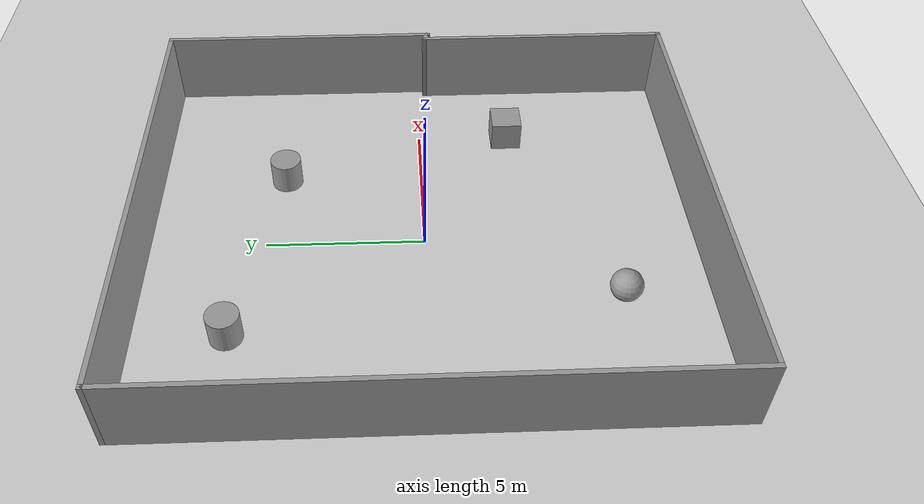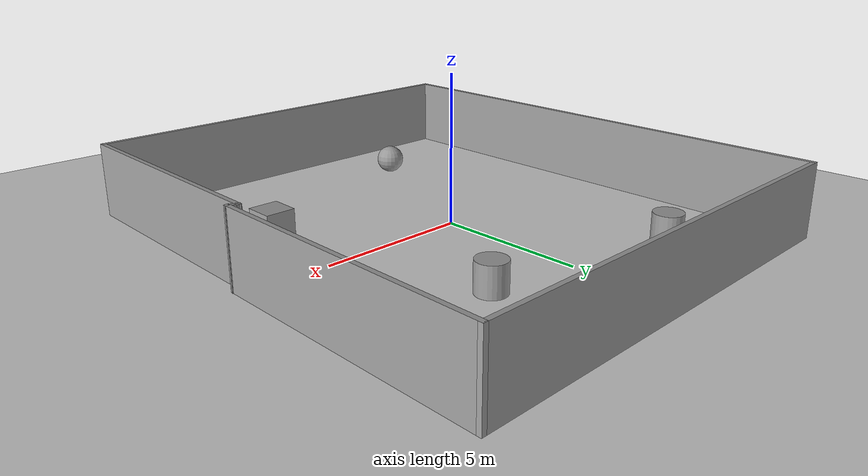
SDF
<sdf version="1.7">
 <world name="default">
  <light name="sun" type="directional">
   <pose>0 0 10 0 -0 0</pose>
   <diffuse>0.8 0.8 0.8 1</diffuse>
   <specular>0.2 0.2 0.2 1</specular>
   <attenuation>
    <range>1000</range>
    <constant>0.9</constant>
    <linear>0.01</linear>
    <quadratic>0.001</quadratic>
   </attenuation>
   <direction>-0.5 0.1 -0.9</direction>
   <spot><inner_angle>0</inner_angle><outer_angle>0</outer_angle><falloff>0</falloff></spot>
  </light>
  <model name="ground_plane">
   <static>1</static>
   <link name="link">
    <collision name="collision">
     <geometry><plane><normal>0 0 1</normal><size>100 100</size></plane></geometry>
     <surface><friction><ode><mu>100</mu><mu2>50</mu2></ode></friction></surface>
    </collision>
    <visual name="visual">
     <cast_shadows>0</cast_shadows>
     <geometry><plane><normal>0 0 1</normal><size>100 100</size></plane></geometry>
     <material>
      <script><uri>file://media/materials/scripts/gazebo.material</uri><name>Gazebo/Grey</name></script>
     </material>
    </visual>
   </link>
  </model>
  <gravity>0 0 -9.8</gravity>
  <magnetic_field>6e-06 2.3e-05 -4.2e-05</magnetic_field>
  <atmosphere type="adiabatic"/>
  <physics type="ode">
   <max_step_size>0.001</max_step_size>
   <real_time_factor>1</real_time_factor>
   <real_time_update_rate>1000</real_time_update_rate>
  </physics>
  <scene><ambient>0.4 0.4 0.4 1</ambient><background>0.7 0.7 0.7 1</background><shadows>1</shadows></scene>
  <spherical_coordinates>
   <surface_model>EARTH_WGS84</surface_model>
   <latitude_deg>0</latitude_deg>
   <longitude_deg>0</longitude_deg>
   <elevation>0</elevation>
   <heading_deg>0</heading_deg>
  </spherical_coordinates>
  <model name="new_wall">
   <pose>1.11385 0.040397 0 0 -0 0</pose>
   <link name="Wall_0">
    <collision name="Wall_0_Collision">
     <geometry><box><size>9.25 0.15 2.5</size></box></geometry>
     <pose>0 0 1.25 0 -0 0</pose>
    </collision>
    <visual name="Wall_0_Visual">
     <pose>0 0 1.25 0 -0 0</pose>
     <geometry><box><size>9.25 0.15 2.5</size></box></geometry>
     <material>
      <script><uri>file://media/materials/scripts/gazebo.material</uri><name>Gazebo/Grey</name></script>
      <ambient>1 1 1 1</ambient>
     </material>
     <meta><layer>0</layer></meta>
    </visual>
    <pose>6.7475 4.125 0 0 -0 1.5708</pose>
   </link>
   <link name="Wall_1">
    <collision name="Wall_1_Collision">
     <geometry><box><size>15 0.15 2.5</size></box></geometry>
     <pose>0 0 1.25 0 -0 0</pose>
    </collision>
    <visual name="Wall_1_Visual">
     <pose>0 0 1.25 0 -0 0</pose>
     <geometry><box><size>15 0.15 2.5</size></box></geometry>
     <material>
      <script><uri>file://media/materials/scripts/gazebo.material</uri><name>Gazebo/Grey</name></script>
      <ambient>1 1 1 1</ambient>
     </material>
     <meta><layer>0</layer></meta>
    </visual>
    <pose>-0.677499 8.675 0 0 -0 3.14159</pose>
   </link>
   <link name="Wall_2">
    <collision name="Wall_2_Collision">
     <geometry><box><size>17.5 0.15 2.5</size></box></geometry>
     <pose>0 0 1.25 0 -0 0</pose>
    </collision>
    <visual name="Wall_2_Visual">
     <pose>0 0 1.25 0 -0 0</pose>
     <geometry><box><size>17.5 0.15 2.5</size></box></geometry>
     <material>
      <script><uri>file://media/materials/scripts/gazebo.material</uri><name>Gazebo/Grey</name></script>
      <ambient>1 1 1 1</ambient>
     </material>
     <meta><layer>0</layer></meta>
    </visual>
    <pose>-8.1025 -0 0 0 -0 -1.5708</pose>
   </link>
   <link name="Wall_3">
    <collision name="Wall_3_Collision">
     <geometry><box><size>14.75 0.15 2.5</size></box></geometry>
     <pose>0 0 1.25 0 -0 0</pose>
    </collision>
    <visual name="Wall_3_Visual">
     <pose>0 0 1.25 0 -0 0</pose>
     <geometry><box><size>14.75 0.15 2.5</size></box></geometry>
     <material>
      <script><uri>file://media/materials/scripts/gazebo.material</uri><name>Gazebo/Grey</name></script>
      <ambient>1 1 1 1</ambient>
     </material>
     <meta><layer>0</layer></meta>
    </visual>
    <pose>-0.802499 -8.675 0 0 -0 0</pose>
   </link>
   <link name="Wall_4">
    <collision name="Wall_4_Collision">
     <geometry><box><size>8.5 0.15 2.5</size></box></geometry>
     <pose>0 0 1.25 0 -0 0</pose>
    </collision>
    <visual name="Wall_4_Visual">
     <pose>0 0 1.25 0 -0 0</pose>
     <geometry><box><size>8.5 0.15 2.5</size></box></geometry>
     <material>
      <script><uri>file://media/materials/scripts/gazebo.material</uri><name>Gazebo/Grey</name></script>
      <ambient>1 1 1 1</ambient>
     </material>
     <meta><layer>0</layer></meta>
    </visual>
    <pose>6.4975 -4.5 0 0 -0 1.5708</pose>
   </link>
   <link name="Wall_6">
    <collision name="Wall_6_Collision">
     <geometry><box><size>0.419258 0.15 2.5</size></box></geometry>
     <pose>0 0 1.25 0 -0 0</pose>
    </collision>
    <visual name="Wall_6_Visual">
     <pose>0 0 1.25 0 -0 0</pose>
     <geometry><box><size>0.419258 0.15 2.5</size></box></geometry>
     <material>
      <script><uri>file://media/materials/scripts/gazebo.material</uri><name>Gazebo/Grey</name></script>
      <ambient>1 1 1 1</ambient>
     </material>
     <meta><layer>0</layer></meta>
    </visual>
    <pose>6.6225 -0.375 0 0 -0 -0.380506</pose>
   </link>
   <static>1</static>
  </model>
  <model name="unit_sphere">
   <pose>-2.48763 -5.9011 0.5 0 -0 0</pose>
   <link name="link">
    <inertial>
     <mass>1</mass>
     <inertia><ixx>0.1</ixx><ixy>0</ixy><ixz>0</ixz><iyy>0.1</iyy><iyz>0</iyz><izz>0.1</izz></inertia>
    </inertial>
    <collision name="collision"><geometry><sphere><radius>0.5</radius></sphere></geometry></collision>
    <visual name="visual">
     <geometry><sphere><radius>0.5</radius></sphere></geometry>
     <material>
      <script><name>Gazebo/Grey</name><uri>file://media/materials/scripts/gazebo.material</uri></script>
     </material>
    </visual>
   </link>
  </model>
  <model name="unit_cylinder">
   <pose>-3.60353 5.86873 0.499997 3e-06 4e-06 -0</pose>
   <link name="link">
    <inertial>
     <mass>1</mass>
     <inertia><ixx>0.145833</ixx><ixy>0</ixy><ixz>0</ixz><iyy>0.145833</iyy><iyz>0</iyz><izz>0.125</izz></inertia>
    </inertial>
    <collision name="collision">
     <geometry><cylinder><radius>0.5</radius><length>1</length></cylinder></geometry>
    </collision>
    <visual name="visual">
     <geometry><cylinder><radius>0.5</radius><length>1</length></cylinder></geometry>
     <material>
      <script><name>Gazebo/Grey</name><uri>file://media/materials/scripts/gazebo.material</uri></script>
     </material>
    </visual>
   </link>
  </model>
  <model name="unit_box">
   <pose>4.91185 -2.99171 0.499995 -1e-05 -0 0</pose>
   <link name="link">
    <inertial>
     <mass>1</mass>
     <inertia>
      <ixx>0.166667</ixx>
      <ixy>0</ixy>
      <ixz>0</ixz>
      <iyy>0.166667</iyy>
      <iyz>0</iyz>
      <izz>0.166667</izz>
     </inertia>
    </inertial>
    <collision name="collision"><geometry><box><size>1 1 1</size></box></geometry></collision>
    <visual name="visual">
     <geometry><box><size>1 1 1</size></box></geometry>
     <material>
      <script><name>Gazebo/Grey</name><uri>file://media/materials/scripts/gazebo.material</uri></script>
     </material>
    </visual>
   </link>
  </model>
  <model name="unit_cylinder_0">
   <pose>2.96191 4.50136 0.499997 3e-06 4e-06 -0</pose>
   <link name="link">
    <inertial>
     <mass>1</mass>
     <inertia><ixx>0.145833</ixx><ixy>0</ixy><ixz>0</ixz><iyy>0.145833</iyy><iyz>0</iyz><izz>0.125</izz></inertia>
    </inertial>
    <collision name="collision">
     <geometry><cylinder><radius>0.5</radius><length>1</length></cylinder></geometry>
    </collision>
    <visual name="visual">
     <geometry><cylinder><radius>0.5</radius><length>1</length></cylinder></geometry>
     <material>
      <script><name>Gazebo/Grey</name><uri>file://media/materials/scripts/gazebo.material</uri></script>
     </material>
    </visual>
   </link>
  </model>
 </world>
</sdf>
